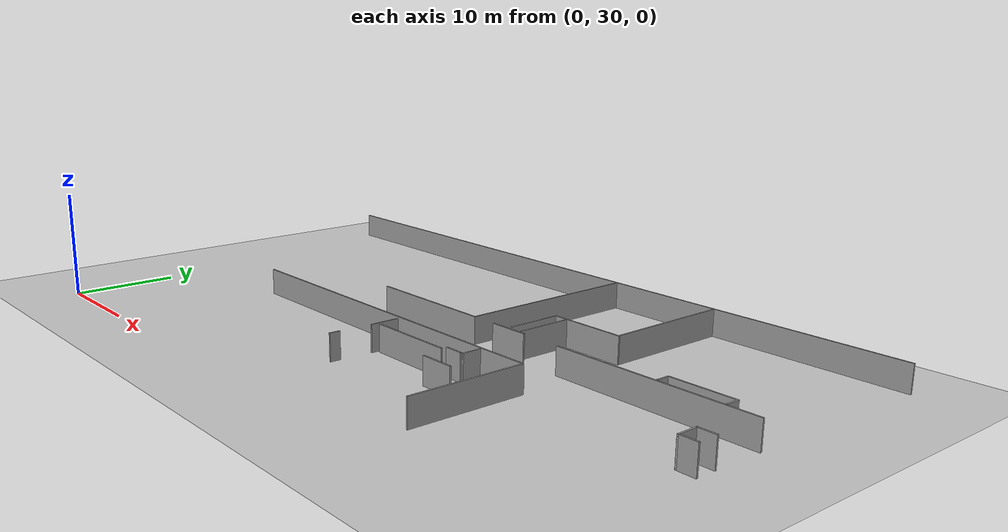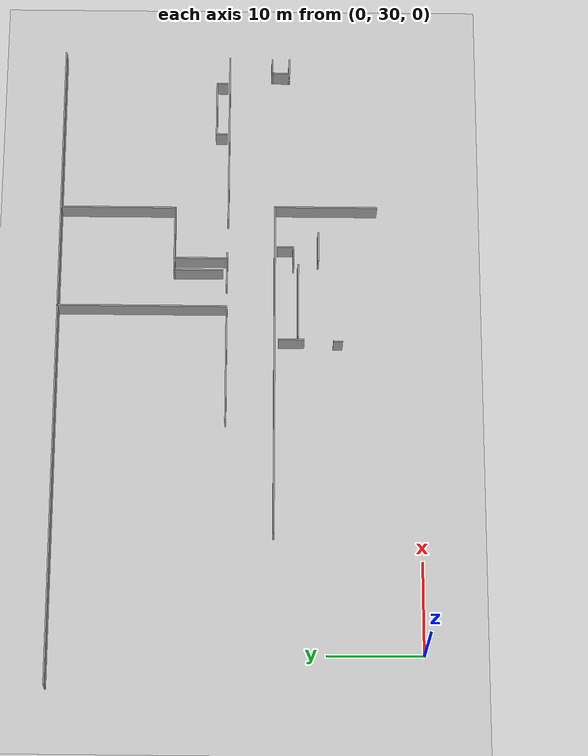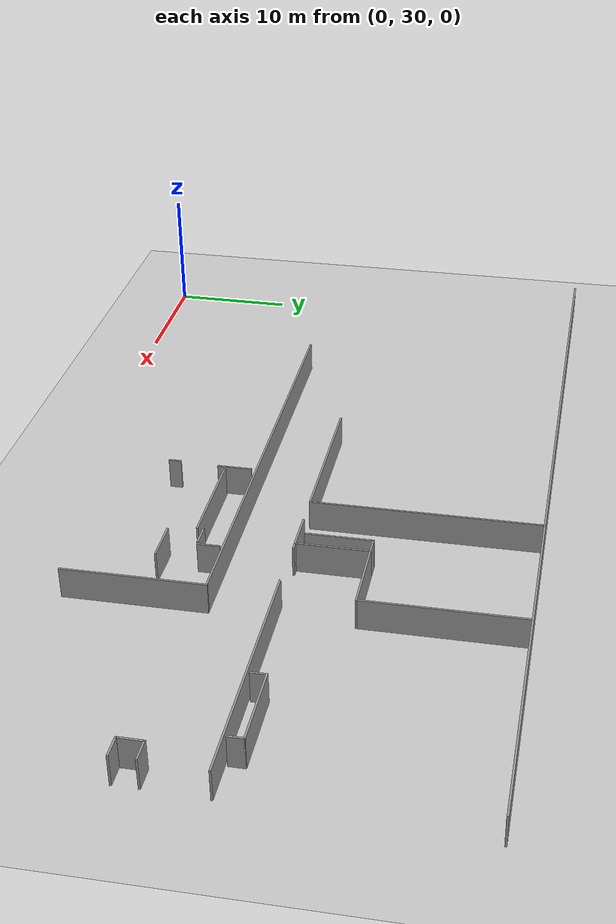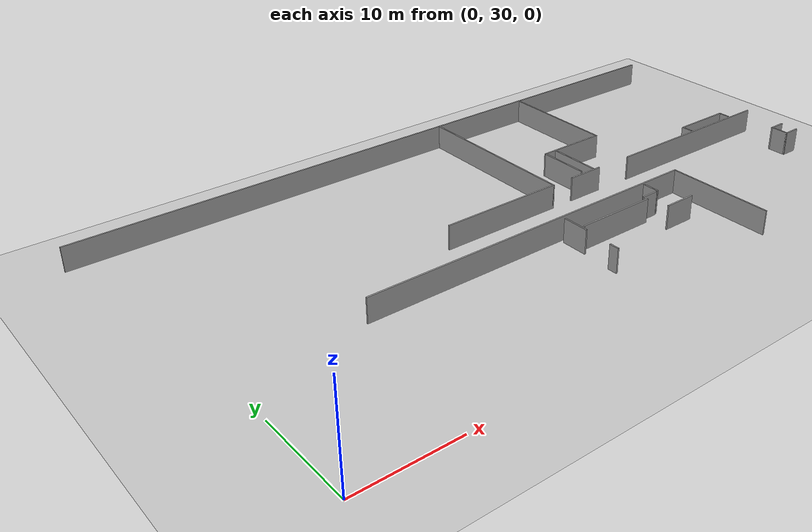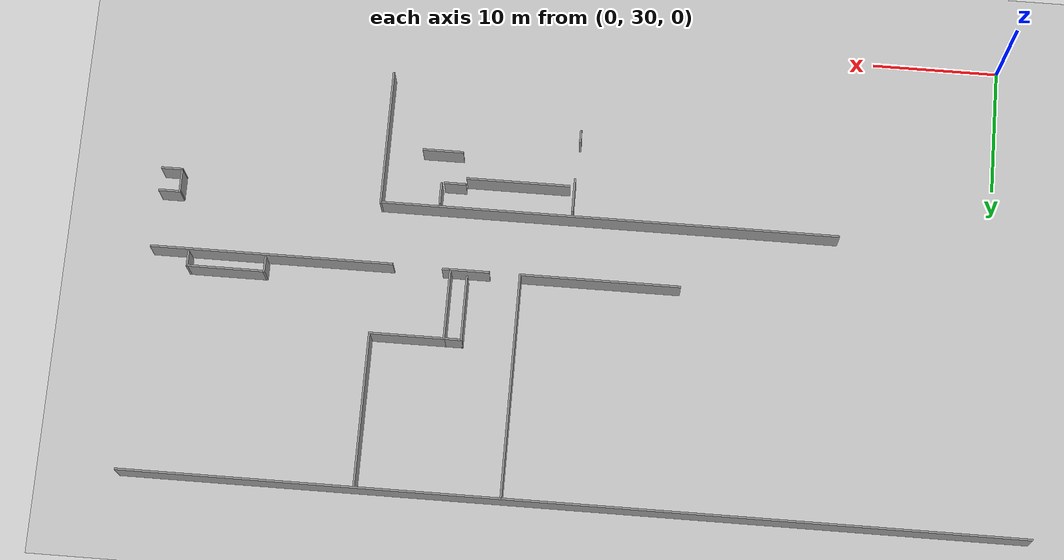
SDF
<sdf version="1.6">
 <world name="default">
  <model name="ground_plane">
   <static>1</static>
   <link name="link">
    <collision name="collision">
     <geometry><plane><normal>0 0 1</normal><size>100 100</size></plane></geometry>
     <surface><friction><ode><mu>100</mu><mu2>50</mu2></ode></friction></surface>
    </collision>
    <visual name="visual">
     <cast_shadows>0</cast_shadows>
     <geometry><plane><normal>0 0 1</normal><size>100 100</size></plane></geometry>
     <material>
      <script><uri>file://media/materials/scripts/gazebo.material</uri><name>Gazebo/Grey</name></script>
     </material>
    </visual>
   </link>
  </model>
  <model name="chengdu_office_0">
   <link name="Wall_102">
    <pose>12.5839 7.08674 0 0 -0 0</pose>
    <visual name="Wall_102_Visual">
     <pose>0 0 1.25 0 -0 0</pose>
     <geometry><box><size>3.25 0.15 2.5</size></box></geometry>
     <material>
      <script><uri>file://media/materials/scripts/gazebo.material</uri><name>Gazebo/Grey</name></script>
      <ambient>1 1 1 1</ambient>
      <diffuse>0.7 0.7 0.7 1</diffuse>
      <specular>0.01 0.01 0.01 1</specular>
      <emissive>0 0 0 1</emissive>
     </material>
    </visual>
    <collision name="Wall_102_Collision">
     <pose>0 0 1.25 0 -0 0</pose>
     <geometry><box><size>3.25 0.15 2.5</size></box></geometry>
     <surface>
      <friction>
       <ode><mu>1</mu><mu2>1</mu2><fdir1>0 0 0</fdir1><slip1>0</slip1><slip2>0</slip2></ode>
       <torsional>
        <coefficient>1</coefficient>
        <patch_radius>0</patch_radius>
        <surface_radius>0</surface_radius>
        <use_patch_radius>1</use_patch_radius>
        <ode><slip>0</slip></ode>
       </torsional>
      </friction>
      <bounce><restitution_coefficient>0</restitution_coefficient><threshold>1e+06</threshold></bounce>
      <contact>
       <collide_without_contact>0</collide_without_contact>
       <collide_without_contact_bitmask>1</collide_without_contact_bitmask>
       <collide_bitmask>1</collide_bitmask>
       <ode>
        <soft_cfm>0</soft_cfm>
        <soft_erp>0.2</soft_erp>
        <kp>1e+13</kp>
        <kd>1</kd>
        <max_vel>0.01</max_vel>
        <min_depth>0</min_depth>
       </ode>
       <bullet>
        <split_impulse>1</split_impulse>
        <split_impulse_penetration_threshold>-0.01</split_impulse_penetration_threshold>
        <soft_cfm>0</soft_cfm>
        <soft_erp>0.2</soft_erp>
        <kp>1e+13</kp>
        <kd>1</kd>
       </bullet>
      </contact>
     </surface>
    </collision>
   </link>
   <link name="Wall_114">
    <pose>11.3778 9.72671 0 0 -0 0</pose>
    <visual name="Wall_114_Visual">
     <pose>0 0 1.25 0 -0 0</pose>
     <geometry><box><size>1.75 0.15 2.5</size></box></geometry>
     <material>
      <script><uri>file://media/materials/scripts/gazebo.material</uri><name>Gazebo/Grey</name></script>
      <ambient>1 1 1 1</ambient>
      <diffuse>0.7 0.7 0.7 1</diffuse>
      <specular>0.01 0.01 0.01 1</specular>
      <emissive>0 0 0 1</emissive>
     </material>
    </visual>
    <collision name="Wall_114_Collision">
     <pose>0 0 1.25 0 -0 0</pose>
     <geometry><box><size>1.75 0.15 2.5</size></box></geometry>
     <surface>
      <friction>
       <ode><mu>1</mu><mu2>1</mu2><fdir1>0 0 0</fdir1><slip1>0</slip1><slip2>0</slip2></ode>
       <torsional>
        <coefficient>1</coefficient>
        <patch_radius>0</patch_radius>
        <surface_radius>0</surface_radius>
        <use_patch_radius>1</use_patch_radius>
        <ode><slip>0</slip></ode>
       </torsional>
      </friction>
      <bounce><restitution_coefficient>0</restitution_coefficient><threshold>1e+06</threshold></bounce>
      <contact>
       <collide_without_contact>0</collide_without_contact>
       <collide_without_contact_bitmask>1</collide_without_contact_bitmask>
       <collide_bitmask>1</collide_bitmask>
       <ode>
        <soft_cfm>0</soft_cfm>
        <soft_erp>0.2</soft_erp>
        <kp>1e+13</kp>
        <kd>1</kd>
        <max_vel>0.01</max_vel>
        <min_depth>0</min_depth>
       </ode>
       <bullet>
        <split_impulse>1</split_impulse>
        <split_impulse_penetration_threshold>-0.01</split_impulse_penetration_threshold>
        <soft_cfm>0</soft_cfm>
        <soft_erp>0.2</soft_erp>
        <kp>1e+13</kp>
        <kd>1</kd>
       </bullet>
      </contact>
     </surface>
    </collision>
   </link>
   <link name="Wall_142">
    <pose>33.9307 12.0738 0 0 -0 3.14159</pose>
    <visual name="Wall_142_Visual">
     <pose>0 0 1.25 0 -0 0</pose>
     <geometry><box><size>1.75 0.15 2.5</size></box></geometry>
     <material>
      <script><uri>file://media/materials/scripts/gazebo.material</uri><name>Gazebo/Grey</name></script>
      <ambient>1 1 1 1</ambient>
      <diffuse>0.7 0.7 0.7 1</diffuse>
      <specular>0.01 0.01 0.01 1</specular>
      <emissive>0 0 0 1</emissive>
     </material>
    </visual>
    <collision name="Wall_142_Collision">
     <pose>0 0 1.25 0 -0 0</pose>
     <geometry><box><size>1.75 0.15 2.5</size></box></geometry>
     <surface>
      <friction>
       <ode><mu>1</mu><mu2>1</mu2><fdir1>0 0 0</fdir1><slip1>0</slip1><slip2>0</slip2></ode>
       <torsional>
        <coefficient>1</coefficient>
        <patch_radius>0</patch_radius>
        <surface_radius>0</surface_radius>
        <use_patch_radius>1</use_patch_radius>
        <ode><slip>0</slip></ode>
       </torsional>
      </friction>
      <bounce><restitution_coefficient>0</restitution_coefficient><threshold>1e+06</threshold></bounce>
      <contact>
       <collide_without_contact>0</collide_without_contact>
       <collide_without_contact_bitmask>1</collide_without_contact_bitmask>
       <collide_bitmask>1</collide_bitmask>
       <ode>
        <soft_cfm>0</soft_cfm>
        <soft_erp>0.2</soft_erp>
        <kp>1e+13</kp>
        <kd>1</kd>
        <max_vel>0.01</max_vel>
        <min_depth>0</min_depth>
       </ode>
       <bullet>
        <split_impulse>1</split_impulse>
        <split_impulse_penetration_threshold>-0.01</split_impulse_penetration_threshold>
        <soft_cfm>0</soft_cfm>
        <soft_erp>0.2</soft_erp>
        <kp>1e+13</kp>
        <kd>1</kd>
       </bullet>
      </contact>
     </surface>
    </collision>
   </link>
   <link name="Wall_143">
    <pose>33.1307 11.1488 0 0 0 -1.5708</pose>
    <visual name="Wall_143_Visual">
     <pose>0 0 1.25 0 -0 0</pose>
     <geometry><box><size>2 0.15 2.5</size></box></geometry>
     <material>
      <script><uri>file://media/materials/scripts/gazebo.material</uri><name>Gazebo/Grey</name></script>
      <ambient>1 1 1 1</ambient>
      <diffuse>0.7 0.7 0.7 1</diffuse>
      <specular>0.01 0.01 0.01 1</specular>
      <emissive>0 0 0 1</emissive>
     </material>
    </visual>
    <collision name="Wall_143_Collision">
     <pose>0 0 1.25 0 -0 0</pose>
     <geometry><box><size>2 0.15 2.5</size></box></geometry>
     <surface>
      <friction>
       <ode><mu>1</mu><mu2>1</mu2><fdir1>0 0 0</fdir1><slip1>0</slip1><slip2>0</slip2></ode>
       <torsional>
        <coefficient>1</coefficient>
        <patch_radius>0</patch_radius>
        <surface_radius>0</surface_radius>
        <use_patch_radius>1</use_patch_radius>
        <ode><slip>0</slip></ode>
       </torsional>
      </friction>
      <bounce><restitution_coefficient>0</restitution_coefficient><threshold>1e+06</threshold></bounce>
      <contact>
       <collide_without_contact>0</collide_without_contact>
       <collide_without_contact_bitmask>1</collide_without_contact_bitmask>
       <collide_bitmask>1</collide_bitmask>
       <ode>
        <soft_cfm>0</soft_cfm>
        <soft_erp>0.2</soft_erp>
        <kp>1e+13</kp>
        <kd>1</kd>
        <max_vel>0.01</max_vel>
        <min_depth>0</min_depth>
       </ode>
       <bullet>
        <split_impulse>1</split_impulse>
        <split_impulse_penetration_threshold>-0.01</split_impulse_penetration_threshold>
        <soft_cfm>0</soft_cfm>
        <soft_erp>0.2</soft_erp>
        <kp>1e+13</kp>
        <kd>1</kd>
       </bullet>
      </contact>
     </surface>
    </collision>
   </link>
   <link name="Wall_144">
    <pose>33.9307 10.2238 0 0 -0 0</pose>
    <visual name="Wall_144_Visual">
     <pose>0 0 1.25 0 -0 0</pose>
     <geometry><box><size>1.75 0.15 2.5</size></box></geometry>
     <material>
      <script><uri>file://media/materials/scripts/gazebo.material</uri><name>Gazebo/Grey</name></script>
      <ambient>1 1 1 1</ambient>
      <diffuse>0.7 0.7 0.7 1</diffuse>
      <specular>0.01 0.01 0.01 1</specular>
      <emissive>0 0 0 1</emissive>
     </material>
    </visual>
    <collision name="Wall_144_Collision">
     <pose>0 0 1.25 0 -0 0</pose>
     <geometry><box><size>1.75 0.15 2.5</size></box></geometry>
     <surface>
      <friction>
       <ode><mu>1</mu><mu2>1</mu2><fdir1>0 0 0</fdir1><slip1>0</slip1><slip2>0</slip2></ode>
       <torsional>
        <coefficient>1</coefficient>
        <patch_radius>0</patch_radius>
        <surface_radius>0</surface_radius>
        <use_patch_radius>1</use_patch_radius>
        <ode><slip>0</slip></ode>
       </torsional>
      </friction>
      <bounce><restitution_coefficient>0</restitution_coefficient><threshold>1e+06</threshold></bounce>
      <contact>
       <collide_without_contact>0</collide_without_contact>
       <collide_without_contact_bitmask>1</collide_without_contact_bitmask>
       <collide_bitmask>1</collide_bitmask>
       <ode>
        <soft_cfm>0</soft_cfm>
        <soft_erp>0.2</soft_erp>
        <kp>1e+13</kp>
        <kd>1</kd>
        <max_vel>0.01</max_vel>
        <min_depth>0</min_depth>
       </ode>
       <bullet>
        <split_impulse>1</split_impulse>
        <split_impulse_penetration_threshold>-0.01</split_impulse_penetration_threshold>
        <soft_cfm>0</soft_cfm>
        <soft_erp>0.2</soft_erp>
        <kp>1e+13</kp>
        <kd>1</kd>
       </bullet>
      </contact>
     </surface>
    </collision>
   </link>
   <link name="Wall_2">
    <pose>0.124998 34.675 0 0 -0 3.14159</pose>
    <visual name="Wall_2_Visual">
     <pose>0 0 1.25 0 -0 0</pose>
     <geometry><box><size>70.75 0.15 2.5</size></box></geometry>
     <material>
      <script><uri>file://media/materials/scripts/gazebo.material</uri><name>Gazebo/Grey</name></script>
      <ambient>1 1 1 1</ambient>
      <diffuse>0.7 0.7 0.7 1</diffuse>
      <specular>0.01 0.01 0.01 1</specular>
      <emissive>0 0 0 1</emissive>
     </material>
    </visual>
    <collision name="Wall_2_Collision">
     <pose>0 0 1.25 0 -0 0</pose>
     <geometry><box><size>70.75 0.15 2.5</size></box></geometry>
     <surface>
      <friction>
       <ode><mu>1</mu><mu2>1</mu2><fdir1>0 0 0</fdir1><slip1>0</slip1><slip2>0</slip2></ode>
       <torsional>
        <coefficient>1</coefficient>
        <patch_radius>0</patch_radius>
        <surface_radius>0</surface_radius>
        <use_patch_radius>1</use_patch_radius>
        <ode><slip>0</slip></ode>
       </torsional>
      </friction>
      <bounce><restitution_coefficient>0</restitution_coefficient><threshold>1e+06</threshold></bounce>
      <contact>
       <collide_without_contact>0</collide_without_contact>
       <collide_without_contact_bitmask>1</collide_without_contact_bitmask>
       <collide_bitmask>1</collide_bitmask>
       <ode>
        <soft_cfm>0</soft_cfm>
        <soft_erp>0.2</soft_erp>
        <kp>1e+13</kp>
        <kd>1</kd>
        <max_vel>0.01</max_vel>
        <min_depth>0</min_depth>
       </ode>
       <bullet>
        <split_impulse>1</split_impulse>
        <split_impulse_penetration_threshold>-0.01</split_impulse_penetration_threshold>
        <soft_cfm>0</soft_cfm>
        <soft_erp>0.2</soft_erp>
        <kp>1e+13</kp>
        <kd>1</kd>
       </bullet>
      </contact>
     </surface>
    </collision>
   </link>
   <link name="Wall_33">
    <pose>-0.673851 16.7988 0 0 -0 0</pose>
    <visual name="Wall_33_Visual">
     <pose>0 0 1.25 0 -0 0</pose>
     <geometry><box><size>12.75 0.15 2.5</size></box></geometry>
     <material>
      <script><uri>file://media/materials/scripts/gazebo.material</uri><name>Gazebo/Grey</name></script>
      <ambient>1 1 1 1</ambient>
      <diffuse>0.7 0.7 0.7 1</diffuse>
      <specular>0.01 0.01 0.01 1</specular>
      <emissive>0 0 0 1</emissive>
     </material>
    </visual>
    <collision name="Wall_33_Collision">
     <pose>0 0 1.25 0 -0 0</pose>
     <geometry><box><size>12.75 0.15 2.5</size></box></geometry>
     <surface>
      <friction>
       <ode><mu>1</mu><mu2>1</mu2><fdir1>0 0 0</fdir1><slip1>0</slip1><slip2>0</slip2></ode>
       <torsional>
        <coefficient>1</coefficient>
        <patch_radius>0</patch_radius>
        <surface_radius>0</surface_radius>
        <use_patch_radius>1</use_patch_radius>
        <ode><slip>0</slip></ode>
       </torsional>
      </friction>
      <bounce><restitution_coefficient>0</restitution_coefficient><threshold>1e+06</threshold></bounce>
      <contact>
       <collide_without_contact>0</collide_without_contact>
       <collide_without_contact_bitmask>1</collide_without_contact_bitmask>
       <collide_bitmask>1</collide_bitmask>
       <ode>
        <soft_cfm>0</soft_cfm>
        <soft_erp>0.2</soft_erp>
        <kp>1e+13</kp>
        <kd>1</kd>
        <max_vel>0.01</max_vel>
        <min_depth>0</min_depth>
       </ode>
       <bullet>
        <split_impulse>1</split_impulse>
        <split_impulse_penetration_threshold>-0.01</split_impulse_penetration_threshold>
        <soft_cfm>0</soft_cfm>
        <soft_erp>0.2</soft_erp>
        <kp>1e+13</kp>
        <kd>1</kd>
       </bullet>
      </contact>
     </surface>
    </collision>
   </link>
   <link name="Wall_34">
    <pose>5.62615 25.7238 0 0 -0 1.5708</pose>
    <visual name="Wall_34_Visual">
     <pose>0 0 1.25 0 -0 0</pose>
     <geometry><box><size>18 0.15 2.5</size></box></geometry>
     <material>
      <script><uri>file://media/materials/scripts/gazebo.material</uri><name>Gazebo/Grey</name></script>
      <ambient>1 1 1 1</ambient>
      <diffuse>0.7 0.7 0.7 1</diffuse>
      <specular>0.01 0.01 0.01 1</specular>
      <emissive>0 0 0 1</emissive>
     </material>
    </visual>
    <collision name="Wall_34_Collision">
     <pose>0 0 1.25 0 -0 0</pose>
     <geometry><box><size>18 0.15 2.5</size></box></geometry>
     <surface>
      <friction>
       <ode><mu>1</mu><mu2>1</mu2><fdir1>0 0 0</fdir1><slip1>0</slip1><slip2>0</slip2></ode>
       <torsional>
        <coefficient>1</coefficient>
        <patch_radius>0</patch_radius>
        <surface_radius>0</surface_radius>
        <use_patch_radius>1</use_patch_radius>
        <ode><slip>0</slip></ode>
       </torsional>
      </friction>
      <bounce><restitution_coefficient>0</restitution_coefficient><threshold>1e+06</threshold></bounce>
      <contact>
       <collide_without_contact>0</collide_without_contact>
       <collide_without_contact_bitmask>1</collide_without_contact_bitmask>
       <collide_bitmask>1</collide_bitmask>
       <ode>
        <soft_cfm>0</soft_cfm>
        <soft_erp>0.2</soft_erp>
        <kp>1e+13</kp>
        <kd>1</kd>
        <max_vel>0.01</max_vel>
        <min_depth>0</min_depth>
       </ode>
       <bullet>
        <split_impulse>1</split_impulse>
        <split_impulse_penetration_threshold>-0.01</split_impulse_penetration_threshold>
        <soft_cfm>0</soft_cfm>
        <soft_erp>0.2</soft_erp>
        <kp>1e+13</kp>
        <kd>1</kd>
       </bullet>
      </contact>
     </surface>
    </collision>
   </link>
   <link name="Wall_40">
    <pose>16.9842 28.4561 0 0 0 -1.5708</pose>
    <visual name="Wall_40_Visual">
     <pose>0 0 1.25 0 -0 0</pose>
     <geometry><box><size>12.25 0.15 2.5</size></box></geometry>
     <material>
      <script><uri>file://media/materials/scripts/gazebo.material</uri><name>Gazebo/Grey</name></script>
      <ambient>1 1 1 1</ambient>
      <diffuse>0.7 0.7 0.7 1</diffuse>
      <specular>0.01 0.01 0.01 1</specular>
      <emissive>0 0 0 1</emissive>
     </material>
    </visual>
    <collision name="Wall_40_Collision">
     <pose>0 0 1.25 0 -0 0</pose>
     <geometry><box><size>12.25 0.15 2.5</size></box></geometry>
     <surface>
      <friction>
       <ode><mu>1</mu><mu2>1</mu2><fdir1>0 0 0</fdir1><slip1>0</slip1><slip2>0</slip2></ode>
       <torsional>
        <coefficient>1</coefficient>
        <patch_radius>0</patch_radius>
        <surface_radius>0</surface_radius>
        <use_patch_radius>1</use_patch_radius>
        <ode><slip>0</slip></ode>
       </torsional>
      </friction>
      <bounce><restitution_coefficient>0</restitution_coefficient><threshold>1e+06</threshold></bounce>
      <contact>
       <collide_without_contact>0</collide_without_contact>
       <collide_without_contact_bitmask>1</collide_without_contact_bitmask>
       <collide_bitmask>1</collide_bitmask>
       <ode>
        <soft_cfm>0</soft_cfm>
        <soft_erp>0.2</soft_erp>
        <kp>1e+13</kp>
        <kd>1</kd>
        <max_vel>0.01</max_vel>
        <min_depth>0</min_depth>
       </ode>
       <bullet>
        <split_impulse>1</split_impulse>
        <split_impulse_penetration_threshold>-0.01</split_impulse_penetration_threshold>
        <soft_cfm>0</soft_cfm>
        <soft_erp>0.2</soft_erp>
        <kp>1e+13</kp>
        <kd>1</kd>
       </bullet>
      </contact>
     </surface>
    </collision>
   </link>
   <link name="Wall_41">
    <pose>14.0592 22.4061 0 0 -0 3.14159</pose>
    <visual name="Wall_41_Visual">
     <pose>0 0 1.25 0 -0 0</pose>
     <geometry><box><size>6 0.15 2.5</size></box></geometry>
     <material>
      <script><uri>file://media/materials/scripts/gazebo.material</uri><name>Gazebo/Grey</name></script>
      <ambient>1 1 1 1</ambient>
      <diffuse>0.7 0.7 0.7 1</diffuse>
      <specular>0.01 0.01 0.01 1</specular>
      <emissive>0 0 0 1</emissive>
     </material>
    </visual>
    <collision name="Wall_41_Collision">
     <pose>0 0 1.25 0 -0 0</pose>
     <geometry><box><size>6 0.15 2.5</size></box></geometry>
     <surface>
      <friction>
       <ode><mu>1</mu><mu2>1</mu2><fdir1>0 0 0</fdir1><slip1>0</slip1><slip2>0</slip2></ode>
       <torsional>
        <coefficient>1</coefficient>
        <patch_radius>0</patch_radius>
        <surface_radius>0</surface_radius>
        <use_patch_radius>1</use_patch_radius>
        <ode><slip>0</slip></ode>
       </torsional>
      </friction>
      <bounce><restitution_coefficient>0</restitution_coefficient><threshold>1e+06</threshold></bounce>
      <contact>
       <collide_without_contact>0</collide_without_contact>
       <collide_without_contact_bitmask>1</collide_without_contact_bitmask>
       <collide_bitmask>1</collide_bitmask>
       <ode>
        <soft_cfm>0</soft_cfm>
        <soft_erp>0.2</soft_erp>
        <kp>1e+13</kp>
        <kd>1</kd>
        <max_vel>0.01</max_vel>
        <min_depth>0</min_depth>
       </ode>
       <bullet>
        <split_impulse>1</split_impulse>
        <split_impulse_penetration_threshold>-0.01</split_impulse_penetration_threshold>
        <soft_cfm>0</soft_cfm>
        <soft_erp>0.2</soft_erp>
        <kp>1e+13</kp>
        <kd>1</kd>
       </bullet>
      </contact>
     </surface>
    </collision>
   </link>
   <link name="Wall_42">
    <pose>11.1342 19.6061 0 0 0 -1.5708</pose>
    <visual name="Wall_42_Visual">
     <pose>0 0 1.25 0 -0 0</pose>
     <geometry><box><size>5.75 0.15 2.5</size></box></geometry>
     <material>
      <script><uri>file://media/materials/scripts/gazebo.material</uri><name>Gazebo/Grey</name></script>
      <ambient>1 1 1 1</ambient>
      <diffuse>0.7 0.7 0.7 1</diffuse>
      <specular>0.01 0.01 0.01 1</specular>
      <emissive>0 0 0 1</emissive>
     </material>
    </visual>
    <collision name="Wall_42_Collision">
     <pose>0 0 1.25 0 -0 0</pose>
     <geometry><box><size>5.75 0.15 2.5</size></box></geometry>
     <surface>
      <friction>
       <ode><mu>1</mu><mu2>1</mu2><fdir1>0 0 0</fdir1><slip1>0</slip1><slip2>0</slip2></ode>
       <torsional>
        <coefficient>1</coefficient>
        <patch_radius>0</patch_radius>
        <surface_radius>0</surface_radius>
        <use_patch_radius>1</use_patch_radius>
        <ode><slip>0</slip></ode>
       </torsional>
      </friction>
      <bounce><restitution_coefficient>0</restitution_coefficient><threshold>1e+06</threshold></bounce>
      <contact>
       <collide_without_contact>0</collide_without_contact>
       <collide_without_contact_bitmask>1</collide_without_contact_bitmask>
       <collide_bitmask>1</collide_bitmask>
       <ode>
        <soft_cfm>0</soft_cfm>
        <soft_erp>0.2</soft_erp>
        <kp>1e+13</kp>
        <kd>1</kd>
        <max_vel>0.01</max_vel>
        <min_depth>0</min_depth>
       </ode>
       <bullet>
        <split_impulse>1</split_impulse>
        <split_impulse_penetration_threshold>-0.01</split_impulse_penetration_threshold>
        <soft_cfm>0</soft_cfm>
        <soft_erp>0.2</soft_erp>
        <kp>1e+13</kp>
        <kd>1</kd>
       </bullet>
      </contact>
     </surface>
    </collision>
   </link>
   <link name="Wall_44">
    <pose>9.91889 16.797 0 0 -0 0</pose>
    <visual name="Wall_44_Visual">
     <pose>0 0 1.25 0 -0 0</pose>
     <geometry><box><size>3.75 0.15 2.5</size></box></geometry>
     <material>
      <script><uri>file://media/materials/scripts/gazebo.material</uri><name>Gazebo/Grey</name></script>
      <ambient>1 1 1 1</ambient>
      <diffuse>0.7 0.7 0.7 1</diffuse>
      <specular>0.01 0.01 0.01 1</specular>
      <emissive>0 0 0 1</emissive>
     </material>
    </visual>
    <collision name="Wall_44_Collision">
     <pose>0 0 1.25 0 -0 0</pose>
     <geometry><box><size>3.75 0.15 2.5</size></box></geometry>
     <surface>
      <friction>
       <ode><mu>1</mu><mu2>1</mu2><fdir1>0 0 0</fdir1><slip1>0</slip1><slip2>0</slip2></ode>
       <torsional>
        <coefficient>1</coefficient>
        <patch_radius>0</patch_radius>
        <surface_radius>0</surface_radius>
        <use_patch_radius>1</use_patch_radius>
        <ode><slip>0</slip></ode>
       </torsional>
      </friction>
      <bounce><restitution_coefficient>0</restitution_coefficient><threshold>1e+06</threshold></bounce>
      <contact>
       <collide_without_contact>0</collide_without_contact>
       <collide_without_contact_bitmask>1</collide_without_contact_bitmask>
       <collide_bitmask>1</collide_bitmask>
       <ode>
        <soft_cfm>0</soft_cfm>
        <soft_erp>0.2</soft_erp>
        <kp>1e+13</kp>
        <kd>1</kd>
        <max_vel>0.01</max_vel>
        <min_depth>0</min_depth>
       </ode>
       <bullet>
        <split_impulse>1</split_impulse>
        <split_impulse_penetration_threshold>-0.01</split_impulse_penetration_threshold>
        <soft_cfm>0</soft_cfm>
        <soft_erp>0.2</soft_erp>
        <kp>1e+13</kp>
        <kd>1</kd>
       </bullet>
      </contact>
     </surface>
    </collision>
   </link>
   <link name="Wall_46">
    <pose>10.4592 22.4061 0 0 -0 3.14159</pose>
    <visual name="Wall_46_Visual">
     <pose>0 0 1.25 0 -0 0</pose>
     <geometry><box><size>1.5 0.15 2.5</size></box></geometry>
     <material>
      <script><uri>file://media/materials/scripts/gazebo.material</uri><name>Gazebo/Grey</name></script>
      <ambient>1 1 1 1</ambient>
      <diffuse>0.7 0.7 0.7 1</diffuse>
      <specular>0.01 0.01 0.01 1</specular>
      <emissive>0 0 0 1</emissive>
     </material>
    </visual>
    <collision name="Wall_46_Collision">
     <pose>0 0 1.25 0 -0 0</pose>
     <geometry><box><size>1.5 0.15 2.5</size></box></geometry>
     <surface>
      <friction>
       <ode><mu>1</mu><mu2>1</mu2><fdir1>0 0 0</fdir1><slip1>0</slip1><slip2>0</slip2></ode>
       <torsional>
        <coefficient>1</coefficient>
        <patch_radius>0</patch_radius>
        <surface_radius>0</surface_radius>
        <use_patch_radius>1</use_patch_radius>
        <ode><slip>0</slip></ode>
       </torsional>
      </friction>
      <bounce><restitution_coefficient>0</restitution_coefficient><threshold>1e+06</threshold></bounce>
      <contact>
       <collide_without_contact>0</collide_without_contact>
       <collide_without_contact_bitmask>1</collide_without_contact_bitmask>
       <collide_bitmask>1</collide_bitmask>
       <ode>
        <soft_cfm>0</soft_cfm>
        <soft_erp>0.2</soft_erp>
        <kp>1e+13</kp>
        <kd>1</kd>
        <max_vel>0.01</max_vel>
        <min_depth>0</min_depth>
       </ode>
       <bullet>
        <split_impulse>1</split_impulse>
        <split_impulse_penetration_threshold>-0.01</split_impulse_penetration_threshold>
        <soft_cfm>0</soft_cfm>
        <soft_erp>0.2</soft_erp>
        <kp>1e+13</kp>
        <kd>1</kd>
       </bullet>
      </contact>
     </surface>
    </collision>
   </link>
   <link name="Wall_47">
    <pose>9.78423 19.8561 0 0 0 -1.5708</pose>
    <visual name="Wall_47_Visual">
     <pose>0 0 1.25 0 -0 0</pose>
     <geometry><box><size>5.25 0.15 2.5</size></box></geometry>
     <material>
      <script><uri>file://media/materials/scripts/gazebo.material</uri><name>Gazebo/Grey</name></script>
      <ambient>1 1 1 1</ambient>
      <diffuse>0.7 0.7 0.7 1</diffuse>
      <specular>0.01 0.01 0.01 1</specular>
      <emissive>0 0 0 1</emissive>
     </material>
    </visual>
    <collision name="Wall_47_Collision">
     <pose>0 0 1.25 0 -0 0</pose>
     <geometry><box><size>5.25 0.15 2.5</size></box></geometry>
     <surface>
      <friction>
       <ode><mu>1</mu><mu2>1</mu2><fdir1>0 0 0</fdir1><slip1>0</slip1><slip2>0</slip2></ode>
       <torsional>
        <coefficient>1</coefficient>
        <patch_radius>0</patch_radius>
        <surface_radius>0</surface_radius>
        <use_patch_radius>1</use_patch_radius>
        <ode><slip>0</slip></ode>
       </torsional>
      </friction>
      <bounce><restitution_coefficient>0</restitution_coefficient><threshold>1e+06</threshold></bounce>
      <contact>
       <collide_without_contact>0</collide_without_contact>
       <collide_without_contact_bitmask>1</collide_without_contact_bitmask>
       <collide_bitmask>1</collide_bitmask>
       <ode>
        <soft_cfm>0</soft_cfm>
        <soft_erp>0.2</soft_erp>
        <kp>1e+13</kp>
        <kd>1</kd>
        <max_vel>0.01</max_vel>
        <min_depth>0</min_depth>
       </ode>
       <bullet>
        <split_impulse>1</split_impulse>
        <split_impulse_penetration_threshold>-0.01</split_impulse_penetration_threshold>
        <soft_cfm>0</soft_cfm>
        <soft_erp>0.2</soft_erp>
        <kp>1e+13</kp>
        <kd>1</kd>
       </bullet>
      </contact>
     </surface>
    </collision>
   </link>
   <link name="Wall_49">
    <pose>25.3049 16.705 0 0 -0 0</pose>
    <visual name="Wall_49_Visual">
     <pose>0 0 1.25 0 -0 0</pose>
     <geometry><box><size>19.25 0.15 2.5</size></box></geometry>
     <material>
      <script><uri>file://media/materials/scripts/gazebo.material</uri><name>Gazebo/Grey</name></script>
      <ambient>1 1 1 1</ambient>
      <diffuse>0.7 0.7 0.7 1</diffuse>
      <specular>0.01 0.01 0.01 1</specular>
      <emissive>0 0 0 1</emissive>
     </material>
    </visual>
    <collision name="Wall_49_Collision">
     <pose>0 0 1.25 0 -0 0</pose>
     <geometry><box><size>19.25 0.15 2.5</size></box></geometry>
     <surface>
      <friction>
       <ode><mu>1</mu><mu2>1</mu2><fdir1>0 0 0</fdir1><slip1>0</slip1><slip2>0</slip2></ode>
       <torsional>
        <coefficient>1</coefficient>
        <patch_radius>0</patch_radius>
        <surface_radius>0</surface_radius>
        <use_patch_radius>1</use_patch_radius>
        <ode><slip>0</slip></ode>
       </torsional>
      </friction>
      <bounce><restitution_coefficient>0</restitution_coefficient><threshold>1e+06</threshold></bounce>
      <contact>
       <collide_without_contact>0</collide_without_contact>
       <collide_without_contact_bitmask>1</collide_without_contact_bitmask>
       <collide_bitmask>1</collide_bitmask>
       <ode>
        <soft_cfm>0</soft_cfm>
        <soft_erp>0.2</soft_erp>
        <kp>1e+13</kp>
        <kd>1</kd>
        <max_vel>0.01</max_vel>
        <min_depth>0</min_depth>
       </ode>
       <bullet>
        <split_impulse>1</split_impulse>
        <split_impulse_penetration_threshold>-0.01</split_impulse_penetration_threshold>
        <soft_cfm>0</soft_cfm>
        <soft_erp>0.2</soft_erp>
        <kp>1e+13</kp>
        <kd>1</kd>
       </bullet>
      </contact>
     </surface>
    </collision>
   </link>
   <link name="Wall_51">
    <pose>25.7369 17.531 0 0 -0 1.5708</pose>
    <visual name="Wall_51_Visual">
     <pose>0 0 1.25 0 -0 0</pose>
     <geometry><box><size>1.25 0.15 2.5</size></box></geometry>
     <material>
      <script><uri>file://media/materials/scripts/gazebo.material</uri><name>Gazebo/Grey</name></script>
      <ambient>1 1 1 1</ambient>
      <diffuse>0.7 0.7 0.7 1</diffuse>
      <specular>0.01 0.01 0.01 1</specular>
      <emissive>0 0 0 1</emissive>
     </material>
    </visual>
    <collision name="Wall_51_Collision">
     <pose>0 0 1.25 0 -0 0</pose>
     <geometry><box><size>1.25 0.15 2.5</size></box></geometry>
     <surface>
      <friction>
       <ode><mu>1</mu><mu2>1</mu2><fdir1>0 0 0</fdir1><slip1>0</slip1><slip2>0</slip2></ode>
       <torsional>
        <coefficient>1</coefficient>
        <patch_radius>0</patch_radius>
        <surface_radius>0</surface_radius>
        <use_patch_radius>1</use_patch_radius>
        <ode><slip>0</slip></ode>
       </torsional>
      </friction>
      <bounce><restitution_coefficient>0</restitution_coefficient><threshold>1e+06</threshold></bounce>
      <contact>
       <collide_without_contact>0</collide_without_contact>
       <collide_without_contact_bitmask>1</collide_without_contact_bitmask>
       <collide_bitmask>1</collide_bitmask>
       <ode>
        <soft_cfm>0</soft_cfm>
        <soft_erp>0.2</soft_erp>
        <kp>1e+13</kp>
        <kd>1</kd>
        <max_vel>0.01</max_vel>
        <min_depth>0</min_depth>
       </ode>
       <bullet>
        <split_impulse>1</split_impulse>
        <split_impulse_penetration_threshold>-0.01</split_impulse_penetration_threshold>
        <soft_cfm>0</soft_cfm>
        <soft_erp>0.2</soft_erp>
        <kp>1e+13</kp>
        <kd>1</kd>
       </bullet>
      </contact>
     </surface>
    </collision>
   </link>
   <link name="Wall_52">
    <pose>28.7869 18.081 0 0 -0 0</pose>
    <visual name="Wall_52_Visual">
     <pose>0 0 1.25 0 -0 0</pose>
     <geometry><box><size>6.25 0.15 2.5</size></box></geometry>
     <material>
      <script><uri>file://media/materials/scripts/gazebo.material</uri><name>Gazebo/Grey</name></script>
      <ambient>1 1 1 1</ambient>
      <diffuse>0.7 0.7 0.7 1</diffuse>
      <specular>0.01 0.01 0.01 1</specular>
      <emissive>0 0 0 1</emissive>
     </material>
    </visual>
    <collision name="Wall_52_Collision">
     <pose>0 0 1.25 0 -0 0</pose>
     <geometry><box><size>6.25 0.15 2.5</size></box></geometry>
     <surface>
      <friction>
       <ode><mu>1</mu><mu2>1</mu2><fdir1>0 0 0</fdir1><slip1>0</slip1><slip2>0</slip2></ode>
       <torsional>
        <coefficient>1</coefficient>
        <patch_radius>0</patch_radius>
        <surface_radius>0</surface_radius>
        <use_patch_radius>1</use_patch_radius>
        <ode><slip>0</slip></ode>
       </torsional>
      </friction>
      <bounce><restitution_coefficient>0</restitution_coefficient><threshold>1e+06</threshold></bounce>
      <contact>
       <collide_without_contact>0</collide_without_contact>
       <collide_without_contact_bitmask>1</collide_without_contact_bitmask>
       <collide_bitmask>1</collide_bitmask>
       <ode>
        <soft_cfm>0</soft_cfm>
        <soft_erp>0.2</soft_erp>
        <kp>1e+13</kp>
        <kd>1</kd>
        <max_vel>0.01</max_vel>
        <min_depth>0</min_depth>
       </ode>
       <bullet>
        <split_impulse>1</split_impulse>
        <split_impulse_penetration_threshold>-0.01</split_impulse_penetration_threshold>
        <soft_cfm>0</soft_cfm>
        <soft_erp>0.2</soft_erp>
        <kp>1e+13</kp>
        <kd>1</kd>
       </bullet>
      </contact>
     </surface>
    </collision>
   </link>
   <link name="Wall_53">
    <pose>31.8369 17.531 0 0 0 -1.5708</pose>
    <visual name="Wall_53_Visual">
     <pose>0 0 1.25 0 -0 0</pose>
     <geometry><box><size>1.25 0.15 2.5</size></box></geometry>
     <material>
      <script><uri>file://media/materials/scripts/gazebo.material</uri><name>Gazebo/Grey</name></script>
      <ambient>1 1 1 1</ambient>
      <diffuse>0.7 0.7 0.7 1</diffuse>
      <specular>0.01 0.01 0.01 1</specular>
      <emissive>0 0 0 1</emissive>
     </material>
    </visual>
    <collision name="Wall_53_Collision">
     <pose>0 0 1.25 0 -0 0</pose>
     <geometry><box><size>1.25 0.15 2.5</size></box></geometry>
     <surface>
      <friction>
       <ode><mu>1</mu><mu2>1</mu2><fdir1>0 0 0</fdir1><slip1>0</slip1><slip2>0</slip2></ode>
       <torsional>
        <coefficient>1</coefficient>
        <patch_radius>0</patch_radius>
        <surface_radius>0</surface_radius>
        <use_patch_radius>1</use_patch_radius>
        <ode><slip>0</slip></ode>
       </torsional>
      </friction>
      <bounce><restitution_coefficient>0</restitution_coefficient><threshold>1e+06</threshold></bounce>
      <contact>
       <collide_without_contact>0</collide_without_contact>
       <collide_without_contact_bitmask>1</collide_without_contact_bitmask>
       <collide_bitmask>1</collide_bitmask>
       <ode>
        <soft_cfm>0</soft_cfm>
        <soft_erp>0.2</soft_erp>
        <kp>1e+13</kp>
        <kd>1</kd>
        <max_vel>0.01</max_vel>
        <min_depth>0</min_depth>
       </ode>
       <bullet>
        <split_impulse>1</split_impulse>
        <split_impulse_penetration_threshold>-0.01</split_impulse_penetration_threshold>
        <soft_cfm>0</soft_cfm>
        <soft_erp>0.2</soft_erp>
        <kp>1e+13</kp>
        <kd>1</kd>
       </bullet>
      </contact>
     </surface>
    </collision>
   </link>
   <link name="Wall_55">
    <pose>17.1347 6.28357 0 0 -0 1.5708</pose>
    <visual name="Wall_55_Visual">
     <pose>0 0 1.25 0 -0 0</pose>
     <geometry><box><size>11 0.15 2.5</size></box></geometry>
     <material>
      <script><uri>file://media/materials/scripts/gazebo.material</uri><name>Gazebo/Grey</name></script>
      <ambient>1 1 1 1</ambient>
      <diffuse>0.7 0.7 0.7 1</diffuse>
      <specular>0.01 0.01 0.01 1</specular>
      <emissive>0 0 0 1</emissive>
     </material>
    </visual>
    <collision name="Wall_55_Collision">
     <pose>0 0 1.25 0 -0 0</pose>
     <geometry><box><size>11 0.15 2.5</size></box></geometry>
     <surface>
      <friction>
       <ode><mu>1</mu><mu2>1</mu2><fdir1>0 0 0</fdir1><slip1>0</slip1><slip2>0</slip2></ode>
       <torsional>
        <coefficient>1</coefficient>
        <patch_radius>0</patch_radius>
        <surface_radius>0</surface_radius>
        <use_patch_radius>1</use_patch_radius>
        <ode><slip>0</slip></ode>
       </torsional>
      </friction>
      <bounce><restitution_coefficient>0</restitution_coefficient><threshold>1e+06</threshold></bounce>
      <contact>
       <collide_without_contact>0</collide_without_contact>
       <collide_without_contact_bitmask>1</collide_without_contact_bitmask>
       <collide_bitmask>1</collide_bitmask>
       <ode>
        <soft_cfm>0</soft_cfm>
        <soft_erp>0.2</soft_erp>
        <kp>1e+13</kp>
        <kd>1</kd>
        <max_vel>0.01</max_vel>
        <min_depth>0</min_depth>
       </ode>
       <bullet>
        <split_impulse>1</split_impulse>
        <split_impulse_penetration_threshold>-0.01</split_impulse_penetration_threshold>
        <soft_cfm>0</soft_cfm>
        <soft_erp>0.2</soft_erp>
        <kp>1e+13</kp>
        <kd>1</kd>
       </bullet>
      </contact>
     </surface>
    </collision>
   </link>
   <link name="Wall_56">
    <pose>-1.04035 11.7086 0 0 -0 3.14159</pose>
    <visual name="Wall_56_Visual">
     <pose>0 0 1.25 0 -0 0</pose>
     <geometry><box><size>36.5 0.15 2.5</size></box></geometry>
     <material>
      <script><uri>file://media/materials/scripts/gazebo.material</uri><name>Gazebo/Grey</name></script>
      <ambient>1 1 1 1</ambient>
      <diffuse>0.7 0.7 0.7 1</diffuse>
      <specular>0.01 0.01 0.01 1</specular>
      <emissive>0 0 0 1</emissive>
     </material>
    </visual>
    <collision name="Wall_56_Collision">
     <pose>0 0 1.25 0 -0 0</pose>
     <geometry><box><size>36.5 0.15 2.5</size></box></geometry>
     <surface>
      <friction>
       <ode><mu>1</mu><mu2>1</mu2><fdir1>0 0 0</fdir1><slip1>0</slip1><slip2>0</slip2></ode>
       <torsional>
        <coefficient>1</coefficient>
        <patch_radius>0</patch_radius>
        <surface_radius>0</surface_radius>
        <use_patch_radius>1</use_patch_radius>
        <ode><slip>0</slip></ode>
       </torsional>
      </friction>
      <bounce><restitution_coefficient>0</restitution_coefficient><threshold>1e+06</threshold></bounce>
      <contact>
       <collide_without_contact>0</collide_without_contact>
       <collide_without_contact_bitmask>1</collide_without_contact_bitmask>
       <collide_bitmask>1</collide_bitmask>
       <ode>
        <soft_cfm>0</soft_cfm>
        <soft_erp>0.2</soft_erp>
        <kp>1e+13</kp>
        <kd>1</kd>
        <max_vel>0.01</max_vel>
        <min_depth>0</min_depth>
       </ode>
       <bullet>
        <split_impulse>1</split_impulse>
        <split_impulse_penetration_threshold>-0.01</split_impulse_penetration_threshold>
        <soft_cfm>0</soft_cfm>
        <soft_erp>0.2</soft_erp>
        <kp>1e+13</kp>
        <kd>1</kd>
       </bullet>
      </contact>
     </surface>
    </collision>
   </link>
   <link name="Wall_77">
    <pose>1.92879 9.93717 0 0 0 -1.5708</pose>
    <visual name="Wall_77_Visual">
     <pose>0 0 1.25 0 -0 0</pose>
     <geometry><box><size>2.75 0.15 2.5</size></box></geometry>
     <material>
      <script><uri>file://media/materials/scripts/gazebo.material</uri><name>Gazebo/Grey</name></script>
      <ambient>1 1 1 1</ambient>
      <diffuse>0.7 0.7 0.7 1</diffuse>
      <specular>0.01 0.01 0.01 1</specular>
      <emissive>0 0 0 1</emissive>
     </material>
    </visual>
    <collision name="Wall_77_Collision">
     <pose>0 0 1.25 0 -0 0</pose>
     <geometry><box><size>2.75 0.15 2.5</size></box></geometry>
     <surface>
      <friction>
       <ode><mu>1</mu><mu2>1</mu2><fdir1>0 0 0</fdir1><slip1>0</slip1><slip2>0</slip2></ode>
       <torsional>
        <coefficient>1</coefficient>
        <patch_radius>0</patch_radius>
        <surface_radius>0</surface_radius>
        <use_patch_radius>1</use_patch_radius>
        <ode><slip>0</slip></ode>
       </torsional>
      </friction>
      <bounce><restitution_coefficient>0</restitution_coefficient><threshold>1e+06</threshold></bounce>
      <contact>
       <collide_without_contact>0</collide_without_contact>
       <collide_without_contact_bitmask>1</collide_without_contact_bitmask>
       <collide_bitmask>1</collide_bitmask>
       <ode>
        <soft_cfm>0</soft_cfm>
        <soft_erp>0.2</soft_erp>
        <kp>1e+13</kp>
        <kd>1</kd>
        <max_vel>0.01</max_vel>
        <min_depth>0</min_depth>
       </ode>
       <bullet>
        <split_impulse>1</split_impulse>
        <split_impulse_penetration_threshold>-0.01</split_impulse_penetration_threshold>
        <soft_cfm>0</soft_cfm>
        <soft_erp>0.2</soft_erp>
        <kp>1e+13</kp>
        <kd>1</kd>
       </bullet>
      </contact>
     </surface>
    </collision>
   </link>
   <link name="Wall_79">
    <pose>6.38106 9.22581 0 0 -0 0</pose>
    <visual name="Wall_79_Visual">
     <pose>0 0 1.25 0 -0 0</pose>
     <geometry><box><size>8.25 0.15 2.5</size></box></geometry>
     <material>
      <script><uri>file://media/materials/scripts/gazebo.material</uri><name>Gazebo/Grey</name></script>
      <ambient>1 1 1 1</ambient>
      <diffuse>0.7 0.7 0.7 1</diffuse>
      <specular>0.01 0.01 0.01 1</specular>
      <emissive>0 0 0 1</emissive>
     </material>
    </visual>
    <collision name="Wall_79_Collision">
     <pose>0 0 1.25 0 -0 0</pose>
     <geometry><box><size>8.25 0.15 2.5</size></box></geometry>
     <surface>
      <friction>
       <ode><mu>1</mu><mu2>1</mu2><fdir1>0 0 0</fdir1><slip1>0</slip1><slip2>0</slip2></ode>
       <torsional>
        <coefficient>1</coefficient>
        <patch_radius>0</patch_radius>
        <surface_radius>0</surface_radius>
        <use_patch_radius>1</use_patch_radius>
        <ode><slip>0</slip></ode>
       </torsional>
      </friction>
      <bounce><restitution_coefficient>0</restitution_coefficient><threshold>1e+06</threshold></bounce>
      <contact>
       <collide_without_contact>0</collide_without_contact>
       <collide_without_contact_bitmask>1</collide_without_contact_bitmask>
       <collide_bitmask>1</collide_bitmask>
       <ode>
        <soft_cfm>0</soft_cfm>
        <soft_erp>0.2</soft_erp>
        <kp>1e+13</kp>
        <kd>1</kd>
        <max_vel>0.01</max_vel>
        <min_depth>0</min_depth>
       </ode>
       <bullet>
        <split_impulse>1</split_impulse>
        <split_impulse_penetration_threshold>-0.01</split_impulse_penetration_threshold>
        <soft_cfm>0</soft_cfm>
        <soft_erp>0.2</soft_erp>
        <kp>1e+13</kp>
        <kd>1</kd>
       </bullet>
      </contact>
     </surface>
    </collision>
   </link>
   <link name="Wall_81">
    <pose>12.4683 10.6067 0 0 0 -1.5708</pose>
    <visual name="Wall_81_Visual">
     <pose>0 0 1.25 0 -0 0</pose>
     <geometry><box><size>1.75 0.15 2.5</size></box></geometry>
     <material>
      <script><uri>file://media/materials/scripts/gazebo.material</uri><name>Gazebo/Grey</name></script>
      <ambient>1 1 1 1</ambient>
      <diffuse>0.7 0.7 0.7 1</diffuse>
      <specular>0.01 0.01 0.01 1</specular>
      <emissive>0 0 0 1</emissive>
     </material>
    </visual>
    <collision name="Wall_81_Collision">
     <pose>0 0 1.25 0 -0 0</pose>
     <geometry><box><size>1.75 0.15 2.5</size></box></geometry>
     <surface>
      <friction>
       <ode><mu>1</mu><mu2>1</mu2><fdir1>0 0 0</fdir1><slip1>0</slip1><slip2>0</slip2></ode>
       <torsional>
        <coefficient>1</coefficient>
        <patch_radius>0</patch_radius>
        <surface_radius>0</surface_radius>
        <use_patch_radius>1</use_patch_radius>
        <ode><slip>0</slip></ode>
       </torsional>
      </friction>
      <bounce><restitution_coefficient>0</restitution_coefficient><threshold>1e+06</threshold></bounce>
      <contact>
       <collide_without_contact>0</collide_without_contact>
       <collide_without_contact_bitmask>1</collide_without_contact_bitmask>
       <collide_bitmask>1</collide_bitmask>
       <ode>
        <soft_cfm>0</soft_cfm>
        <soft_erp>0.2</soft_erp>
        <kp>1e+13</kp>
        <kd>1</kd>
        <max_vel>0.01</max_vel>
        <min_depth>0</min_depth>
       </ode>
       <bullet>
        <split_impulse>1</split_impulse>
        <split_impulse_penetration_threshold>-0.01</split_impulse_penetration_threshold>
        <soft_cfm>0</soft_cfm>
        <soft_erp>0.2</soft_erp>
        <kp>1e+13</kp>
        <kd>1</kd>
       </bullet>
      </contact>
     </surface>
    </collision>
   </link>
   <link name="Wall_85">
    <pose>1.75393 5.02174 0 0 0 -1.5708</pose>
    <visual name="Wall_85_Visual">
     <pose>0 0 1.25 0 -0 0</pose>
     <geometry><box><size>1 0.15 2.5</size></box></geometry>
     <material>
      <script><uri>file://media/materials/scripts/gazebo.material</uri><name>Gazebo/Grey</name></script>
      <ambient>1 1 1 1</ambient>
      <diffuse>0.7 0.7 0.7 1</diffuse>
      <specular>0.01 0.01 0.01 1</specular>
      <emissive>0 0 0 1</emissive>
     </material>
    </visual>
    <collision name="Wall_85_Collision">
     <pose>0 0 1.25 0 -0 0</pose>
     <geometry><box><size>1 0.15 2.5</size></box></geometry>
     <surface>
      <friction>
       <ode><mu>1</mu><mu2>1</mu2><fdir1>0 0 0</fdir1><slip1>0</slip1><slip2>0</slip2></ode>
       <torsional>
        <coefficient>1</coefficient>
        <patch_radius>0</patch_radius>
        <surface_radius>0</surface_radius>
        <use_patch_radius>1</use_patch_radius>
        <ode><slip>0</slip></ode>
       </torsional>
      </friction>
      <bounce><restitution_coefficient>0</restitution_coefficient><threshold>1e+06</threshold></bounce>
      <contact>
       <collide_without_contact>0</collide_without_contact>
       <collide_without_contact_bitmask>1</collide_without_contact_bitmask>
       <collide_bitmask>1</collide_bitmask>
       <ode>
        <soft_cfm>0</soft_cfm>
        <soft_erp>0.2</soft_erp>
        <kp>1e+13</kp>
        <kd>1</kd>
        <max_vel>0.01</max_vel>
        <min_depth>0</min_depth>
       </ode>
       <bullet>
        <split_impulse>1</split_impulse>
        <split_impulse_penetration_threshold>-0.01</split_impulse_penetration_threshold>
        <soft_cfm>0</soft_cfm>
        <soft_erp>0.2</soft_erp>
        <kp>1e+13</kp>
        <kd>1</kd>
       </bullet>
      </contact>
     </surface>
    </collision>
   </link>
   <static>1</static>
   <pose>31.5228 33.6993 0 0 -0 0</pose>
  </model>
 </world>
</sdf>
